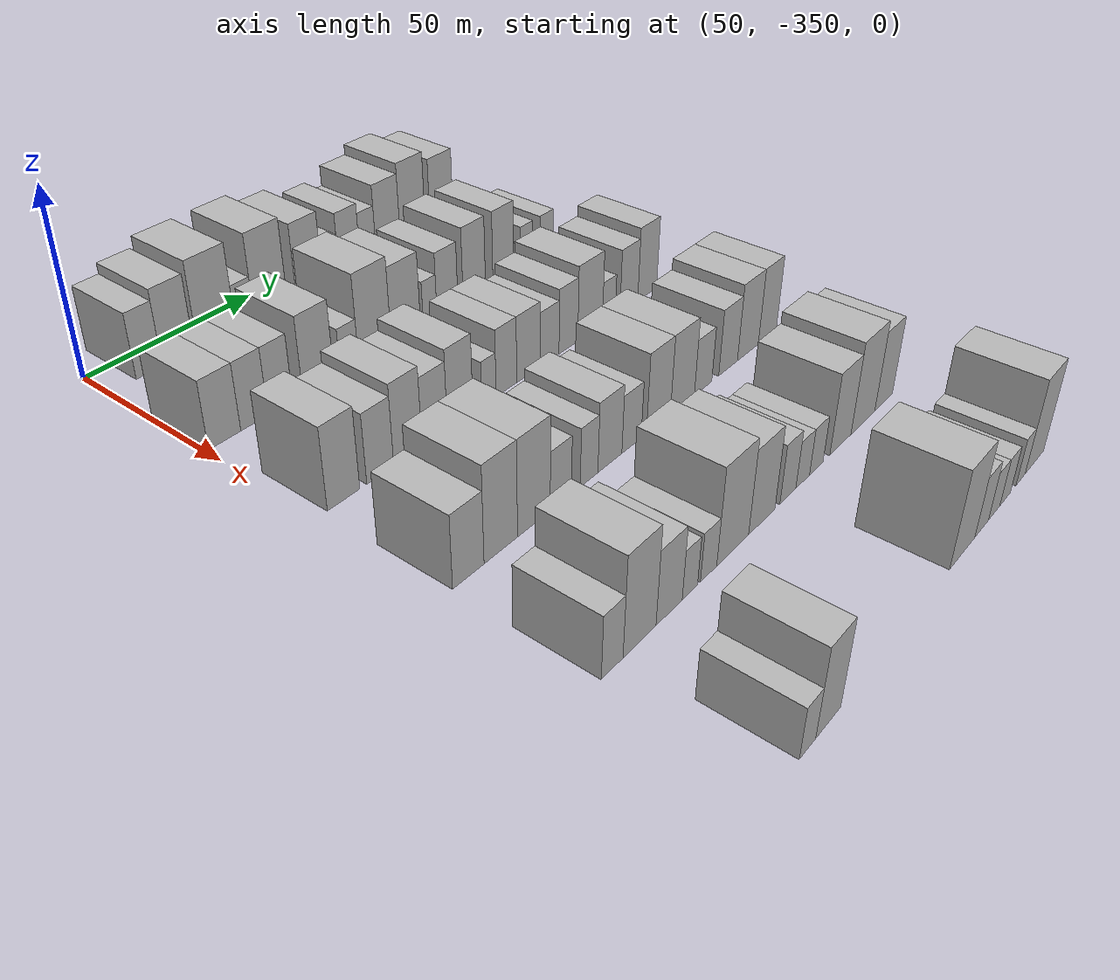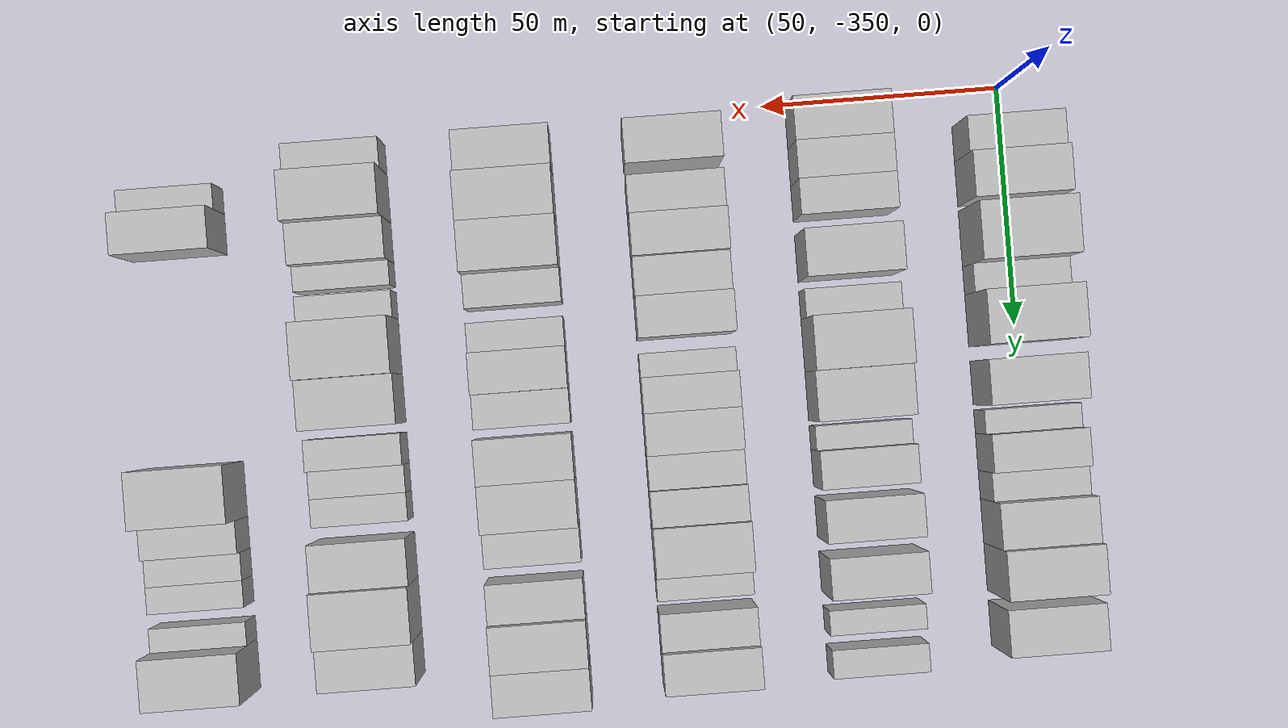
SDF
<sdf version="1.6">
 <world name="default">
  <model name="building_23">
   <static>1</static>
   <pose>50.0000 -338.8808 0 0.000000 0.000000 0.000000</pose>
   <link name="link">
    <pose>0 0 9.00 0 0 0</pose>
    <collision name="collision"><geometry><box><size>20.0000 7.4057 18.0000</size></box></geometry></collision>
    <visual name="visual">
     <cast_shadows>0</cast_shadows>
     <geometry><box><size>20.0000 7.4057 18.0000</size></box></geometry>
     <material>
      <script>
       <uri>model://HANNAS_wall/materials/scripts</uri>
       <uri>model://HANNAS_wall/materials/textures</uri>
       <name>vrc/HANNAS_wall</name>
      </script>
     </material>
    </visual>
   </link>
  </model>
  <model name="building_24">
   <static>1</static>
   <pose>50.0000 -330.4658 0 0.000000 0.000000 0.000000</pose>
   <link name="link">
    <pose>0 0 10.50 0 0 0</pose>
    <collision name="collision"><geometry><box><size>20.0000 9.4243 21.0000</size></box></geometry></collision>
    <visual name="visual">
     <cast_shadows>0</cast_shadows>
     <geometry><box><size>20.0000 9.4243 21.0000</size></box></geometry>
     <material>
      <script>
       <uri>model://HANNAS_wall/materials/scripts</uri>
       <uri>model://HANNAS_wall/materials/textures</uri>
       <name>vrc/HANNAS_wall</name>
      </script>
     </material>
    </visual>
   </link>
  </model>
  <model name="building_25">
   <static>1</static>
   <pose>50.0000 -318.8479 0 0.000000 0.000000 0.000000</pose>
   <link name="link">
    <pose>0 0 12.00 0 0 0</pose>
    <collision name="collision"><geometry><box><size>20.0000 11.8115 24.0000</size></box></geometry></collision>
    <visual name="visual">
     <cast_shadows>0</cast_shadows>
     <geometry><box><size>20.0000 11.8115 24.0000</size></box></geometry>
     <material>
      <script>
       <uri>model://HANNAS_wall/materials/scripts</uri>
       <uri>model://HANNAS_wall/materials/textures</uri>
       <name>vrc/HANNAS_wall</name>
      </script>
     </material>
    </visual>
   </link>
  </model>
  <model name="building_26">
   <static>1</static>
   <pose>50.0000 -309.9669 0 0.000000 0.000000 0.000000</pose>
   <link name="link">
    <pose>0 0 6.00 0 0 0</pose>
    <collision name="collision"><geometry><box><size>20.0000 5.9504 12.0000</size></box></geometry></collision>
    <visual name="visual">
     <cast_shadows>0</cast_shadows>
     <geometry><box><size>20.0000 5.9504 12.0000</size></box></geometry>
     <material>
      <script>
       <uri>model://HANNAS_wall/materials/scripts</uri>
       <uri>model://HANNAS_wall/materials/textures</uri>
       <name>vrc/HANNAS_wall</name>
      </script>
     </material>
    </visual>
   </link>
  </model>
  <model name="building_27">
   <static>1</static>
   <pose>50.0000 -301.4803 0 0.000000 0.000000 0.000000</pose>
   <link name="link">
    <pose>0 0 12.00 0 0 0</pose>
    <collision name="collision"><geometry><box><size>20.0000 11.0227 24.0000</size></box></geometry></collision>
    <visual name="visual">
     <cast_shadows>0</cast_shadows>
     <geometry><box><size>20.0000 11.0227 24.0000</size></box></geometry>
     <material>
      <script>
       <uri>model://HANNAS_wall/materials/scripts</uri>
       <uri>model://HANNAS_wall/materials/textures</uri>
       <name>vrc/HANNAS_wall</name>
      </script>
     </material>
    </visual>
   </link>
  </model>
  <model name="building_28">
   <static>1</static>
   <pose>50.0000 -288.3178 0 0.000000 0.000000 0.000000</pose>
   <link name="link">
    <pose>0 0 10.50 0 0 0</pose>
    <collision name="collision"><geometry><box><size>20.0000 9.3022 21.0000</size></box></geometry></collision>
    <visual name="visual">
     <cast_shadows>0</cast_shadows>
     <geometry><box><size>20.0000 9.3022 21.0000</size></box></geometry>
     <material>
      <script>
       <uri>model://HANNAS_wall/materials/scripts</uri>
       <uri>model://HANNAS_wall/materials/textures</uri>
       <name>vrc/HANNAS_wall</name>
      </script>
     </material>
    </visual>
   </link>
  </model>
  <model name="building_29">
   <static>1</static>
   <pose>50.0000 -280.1687 0 0.000000 0.000000 0.000000</pose>
   <link name="link">
    <pose>0 0 6.00 0 0 0</pose>
    <collision name="collision"><geometry><box><size>20.0000 4.9961 12.0000</size></box></geometry></collision>
    <visual name="visual">
     <cast_shadows>0</cast_shadows>
     <geometry><box><size>20.0000 4.9961 12.0000</size></box></geometry>
     <material>
      <script>
       <uri>model://HANNAS_wall/materials/scripts</uri>
       <uri>model://HANNAS_wall/materials/textures</uri>
       <name>vrc/HANNAS_wall</name>
      </script>
     </material>
    </visual>
   </link>
  </model>
  <model name="building_30">
   <static>1</static>
   <pose>50.0000 -273.7644 0 0.000000 0.000000 0.000000</pose>
   <link name="link">
    <pose>0 0 9.00 0 0 0</pose>
    <collision name="collision"><geometry><box><size>20.0000 7.8124 18.0000</size></box></geometry></collision>
    <visual name="visual">
     <cast_shadows>0</cast_shadows>
     <geometry><box><size>20.0000 7.8124 18.0000</size></box></geometry>
     <material>
      <script>
       <uri>model://HANNAS_wall/materials/scripts</uri>
       <uri>model://HANNAS_wall/materials/textures</uri>
       <name>vrc/HANNAS_wall</name>
      </script>
     </material>
    </visual>
   </link>
  </model>
  <model name="building_31">
   <static>1</static>
   <pose>50.0000 -266.8491 0 0.000000 0.000000 0.000000</pose>
   <link name="link">
    <pose>0 0 7.50 0 0 0</pose>
    <collision name="collision"><geometry><box><size>20.0000 6.0181 15.0000</size></box></geometry></collision>
    <visual name="visual">
     <cast_shadows>0</cast_shadows>
     <geometry><box><size>20.0000 6.0181 15.0000</size></box></geometry>
     <material>
      <script>
       <uri>model://HANNAS_wall/materials/scripts</uri>
       <uri>model://HANNAS_wall/materials/textures</uri>
       <name>vrc/HANNAS_wall</name>
      </script>
     </material>
    </visual>
   </link>
  </model>
  <model name="building_32">
   <static>1</static>
   <pose>50.0000 -259.1165 0 0.000000 0.000000 0.000000</pose>
   <link name="link">
    <pose>0 0 10.50 0 0 0</pose>
    <collision name="collision"><geometry><box><size>20.0000 9.4472 21.0000</size></box></geometry></collision>
    <visual name="visual">
     <cast_shadows>0</cast_shadows>
     <geometry><box><size>20.0000 9.4472 21.0000</size></box></geometry>
     <material>
      <script>
       <uri>model://HANNAS_wall/materials/scripts</uri>
       <uri>model://HANNAS_wall/materials/textures</uri>
       <name>vrc/HANNAS_wall</name>
      </script>
     </material>
    </visual>
   </link>
  </model>
  <model name="building_33">
   <static>1</static>
   <pose>50.0000 -249.3366 0 0.000000 0.000000 0.000000</pose>
   <link name="link">
    <pose>0 0 12.00 0 0 0</pose>
    <collision name="collision"><geometry><box><size>20.0000 10.1127 24.0000</size></box></geometry></collision>
    <visual name="visual">
     <cast_shadows>0</cast_shadows>
     <geometry><box><size>20.0000 10.1127 24.0000</size></box></geometry>
     <material>
      <script>
       <uri>model://HANNAS_wall/materials/scripts</uri>
       <uri>model://HANNAS_wall/materials/textures</uri>
       <name>vrc/HANNAS_wall</name>
      </script>
     </material>
    </visual>
   </link>
  </model>
  <model name="building_34">
   <static>1</static>
   <pose>50.0000 -237.4707 0 0.000000 0.000000 0.000000</pose>
   <link name="link">
    <pose>0 0 10.50 0 0 0</pose>
    <collision name="collision"><geometry><box><size>20.0000 9.6190 21.0000</size></box></geometry></collision>
    <visual name="visual">
     <cast_shadows>0</cast_shadows>
     <geometry><box><size>20.0000 9.6190 21.0000</size></box></geometry>
     <material>
      <script>
       <uri>model://HANNAS_wall/materials/scripts</uri>
       <uri>model://HANNAS_wall/materials/textures</uri>
       <name>vrc/HANNAS_wall</name>
      </script>
     </material>
    </visual>
   </link>
  </model>
  <model name="building_139">
   <static>1</static>
   <pose>85.0000 -344.8213 0 0.000000 0.000000 0.000000</pose>
   <link name="link">
    <pose>0 0 9.00 0 0 0</pose>
    <collision name="collision"><geometry><box><size>20.0000 8.9498 18.0000</size></box></geometry></collision>
    <visual name="visual">
     <cast_shadows>0</cast_shadows>
     <geometry><box><size>20.0000 8.9498 18.0000</size></box></geometry>
     <material>
      <script>
       <uri>model://HANNAS_wall/materials/scripts</uri>
       <uri>model://HANNAS_wall/materials/textures</uri>
       <name>vrc/HANNAS_wall</name>
      </script>
     </material>
    </visual>
   </link>
  </model>
  <model name="building_140">
   <static>1</static>
   <pose>85.0000 -336.4398 0 0.000000 0.000000 0.000000</pose>
   <link name="link">
    <pose>0 0 9.00 0 0 0</pose>
    <collision name="collision"><geometry><box><size>20.0000 7.8134 18.0000</size></box></geometry></collision>
    <visual name="visual">
     <cast_shadows>0</cast_shadows>
     <geometry><box><size>20.0000 7.8134 18.0000</size></box></geometry>
     <material>
      <script>
       <uri>model://HANNAS_wall/materials/scripts</uri>
       <uri>model://HANNAS_wall/materials/textures</uri>
       <name>vrc/HANNAS_wall</name>
      </script>
     </material>
    </visual>
   </link>
  </model>
  <model name="building_141">
   <static>1</static>
   <pose>85.0000 -328.8404 0 0.000000 0.000000 0.000000</pose>
   <link name="link">
    <pose>0 0 9.00 0 0 0</pose>
    <collision name="collision"><geometry><box><size>20.0000 7.3853 18.0000</size></box></geometry></collision>
    <visual name="visual">
     <cast_shadows>0</cast_shadows>
     <geometry><box><size>20.0000 7.3853 18.0000</size></box></geometry>
     <material>
      <script>
       <uri>model://HANNAS_wall/materials/scripts</uri>
       <uri>model://HANNAS_wall/materials/textures</uri>
       <name>vrc/HANNAS_wall</name>
      </script>
     </material>
    </visual>
   </link>
  </model>
  <model name="building_142">
   <static>1</static>
   <pose>85.0000 -317.2574 0 0.000000 0.000000 0.000000</pose>
   <link name="link">
    <pose>0 0 10.50 0 0 0</pose>
    <collision name="collision"><geometry><box><size>20.0000 9.7807 21.0000</size></box></geometry></collision>
    <visual name="visual">
     <cast_shadows>0</cast_shadows>
     <geometry><box><size>20.0000 9.7807 21.0000</size></box></geometry>
     <material>
      <script>
       <uri>model://HANNAS_wall/materials/scripts</uri>
       <uri>model://HANNAS_wall/materials/textures</uri>
       <name>vrc/HANNAS_wall</name>
      </script>
     </material>
    </visual>
   </link>
  </model>
  <model name="building_143">
   <static>1</static>
   <pose>85.0000 -307.3915 0 0.000000 0.000000 0.000000</pose>
   <link name="link">
    <pose>0 0 6.00 0 0 0</pose>
    <collision name="collision"><geometry><box><size>20.0000 5.9512 12.0000</size></box></geometry></collision>
    <visual name="visual">
     <cast_shadows>0</cast_shadows>
     <geometry><box><size>20.0000 5.9512 12.0000</size></box></geometry>
     <material>
      <script>
       <uri>model://HANNAS_wall/materials/scripts</uri>
       <uri>model://HANNAS_wall/materials/textures</uri>
       <name>vrc/HANNAS_wall</name>
      </script>
     </material>
    </visual>
   </link>
  </model>
  <model name="building_144">
   <static>1</static>
   <pose>85.0000 -298.8935 0 0.000000 0.000000 0.000000</pose>
   <link name="link">
    <pose>0 0 12.00 0 0 0</pose>
    <collision name="collision"><geometry><box><size>20.0000 11.0449 24.0000</size></box></geometry></collision>
    <visual name="visual">
     <cast_shadows>0</cast_shadows>
     <geometry><box><size>20.0000 11.0449 24.0000</size></box></geometry>
     <material>
      <script>
       <uri>model://HANNAS_wall/materials/scripts</uri>
       <uri>model://HANNAS_wall/materials/textures</uri>
       <name>vrc/HANNAS_wall</name>
      </script>
     </material>
    </visual>
   </link>
  </model>
  <model name="building_145">
   <static>1</static>
   <pose>85.0000 -288.1964 0 0.000000 0.000000 0.000000</pose>
   <link name="link">
    <pose>0 0 10.50 0 0 0</pose>
    <collision name="collision"><geometry><box><size>20.0000 10.3492 21.0000</size></box></geometry></collision>
    <visual name="visual">
     <cast_shadows>0</cast_shadows>
     <geometry><box><size>20.0000 10.3492 21.0000</size></box></geometry>
     <material>
      <script>
       <uri>model://HANNAS_wall/materials/scripts</uri>
       <uri>model://HANNAS_wall/materials/textures</uri>
       <name>vrc/HANNAS_wall</name>
      </script>
     </material>
    </visual>
   </link>
  </model>
  <model name="building_146">
   <static>1</static>
   <pose>85.0000 -279.5105 0 0.000000 0.000000 0.000000</pose>
   <link name="link">
    <pose>0 0 6.00 0 0 0</pose>
    <collision name="collision"><geometry><box><size>20.0000 5.0227 12.0000</size></box></geometry></collision>
    <visual name="visual">
     <cast_shadows>0</cast_shadows>
     <geometry><box><size>20.0000 5.0227 12.0000</size></box></geometry>
     <material>
      <script>
       <uri>model://HANNAS_wall/materials/scripts</uri>
       <uri>model://HANNAS_wall/materials/textures</uri>
       <name>vrc/HANNAS_wall</name>
      </script>
     </material>
    </visual>
   </link>
  </model>
  <model name="building_147">
   <static>1</static>
   <pose>85.0000 -273.0552 0 0.000000 0.000000 0.000000</pose>
   <link name="link">
    <pose>0 0 9.00 0 0 0</pose>
    <collision name="collision"><geometry><box><size>20.0000 7.8879 18.0000</size></box></geometry></collision>
    <visual name="visual">
     <cast_shadows>0</cast_shadows>
     <geometry><box><size>20.0000 7.8879 18.0000</size></box></geometry>
     <material>
      <script>
       <uri>model://HANNAS_wall/materials/scripts</uri>
       <uri>model://HANNAS_wall/materials/textures</uri>
       <name>vrc/HANNAS_wall</name>
      </script>
     </material>
    </visual>
   </link>
  </model>
  <model name="building_148">
   <static>1</static>
   <pose>85.0000 -262.7360 0 0.000000 0.000000 0.000000</pose>
   <link name="link">
    <pose>0 0 10.50 0 0 0</pose>
    <collision name="collision"><geometry><box><size>20.0000 8.7506 21.0000</size></box></geometry></collision>
    <visual name="visual">
     <cast_shadows>0</cast_shadows>
     <geometry><box><size>20.0000 8.7506 21.0000</size></box></geometry>
     <material>
      <script>
       <uri>model://HANNAS_wall/materials/scripts</uri>
       <uri>model://HANNAS_wall/materials/textures</uri>
       <name>vrc/HANNAS_wall</name>
      </script>
     </material>
    </visual>
   </link>
  </model>
  <model name="building_149">
   <static>1</static>
   <pose>85.0000 -251.1179 0 0.000000 0.000000 0.000000</pose>
   <link name="link">
    <pose>0 0 10.50 0 0 0</pose>
    <collision name="collision"><geometry><box><size>20.0000 8.4857 21.0000</size></box></geometry></collision>
    <visual name="visual">
     <cast_shadows>0</cast_shadows>
     <geometry><box><size>20.0000 8.4857 21.0000</size></box></geometry>
     <material>
      <script>
       <uri>model://HANNAS_wall/materials/scripts</uri>
       <uri>model://HANNAS_wall/materials/textures</uri>
       <name>vrc/HANNAS_wall</name>
      </script>
     </material>
    </visual>
   </link>
  </model>
  <model name="building_150">
   <static>1</static>
   <pose>85.0000 -241.2983 0 0.000000 0.000000 0.000000</pose>
   <link name="link">
    <pose>0 0 6.00 0 0 0</pose>
    <collision name="collision"><geometry><box><size>20.0000 5.1536 12.0000</size></box></geometry></collision>
    <visual name="visual">
     <cast_shadows>0</cast_shadows>
     <geometry><box><size>20.0000 5.1536 12.0000</size></box></geometry>
     <material>
      <script>
       <uri>model://HANNAS_wall/materials/scripts</uri>
       <uri>model://HANNAS_wall/materials/textures</uri>
       <name>vrc/HANNAS_wall</name>
      </script>
     </material>
    </visual>
   </link>
  </model>
  <model name="building_151">
   <static>1</static>
   <pose>85.0000 -232.7689 0 0.000000 0.000000 0.000000</pose>
   <link name="link">
    <pose>0 0 6.00 0 0 0</pose>
    <collision name="collision"><geometry><box><size>20.0000 5.9052 12.0000</size></box></geometry></collision>
    <visual name="visual">
     <cast_shadows>0</cast_shadows>
     <geometry><box><size>20.0000 5.9052 12.0000</size></box></geometry>
     <material>
      <script>
       <uri>model://HANNAS_wall/materials/scripts</uri>
       <uri>model://HANNAS_wall/materials/textures</uri>
       <name>vrc/HANNAS_wall</name>
      </script>
     </material>
    </visual>
   </link>
  </model>
  <model name="building_264">
   <static>1</static>
   <pose>120.0000 -342.4818 0 0.000000 0.000000 0.000000</pose>
   <link name="link">
    <pose>0 0 10.50 0 0 0</pose>
    <collision name="collision"><geometry><box><size>20.0000 9.1230 21.0000</size></box></geometry></collision>
    <visual name="visual">
     <cast_shadows>0</cast_shadows>
     <geometry><box><size>20.0000 9.1230 21.0000</size></box></geometry>
     <material>
      <script>
       <uri>model://HANNAS_wall/materials/scripts</uri>
       <uri>model://HANNAS_wall/materials/textures</uri>
       <name>vrc/HANNAS_wall</name>
      </script>
     </material>
    </visual>
   </link>
  </model>
  <model name="building_265">
   <static>1</static>
   <pose>120.0000 -331.9296 0 0.000000 0.000000 0.000000</pose>
   <link name="link">
    <pose>0 0 9.00 0 0 0</pose>
    <collision name="collision"><geometry><box><size>20.0000 7.9813 18.0000</size></box></geometry></collision>
    <visual name="visual">
     <cast_shadows>0</cast_shadows>
     <geometry><box><size>20.0000 7.9813 18.0000</size></box></geometry>
     <material>
      <script>
       <uri>model://HANNAS_wall/materials/scripts</uri>
       <uri>model://HANNAS_wall/materials/textures</uri>
       <name>vrc/HANNAS_wall</name>
      </script>
     </material>
    </visual>
   </link>
  </model>
  <model name="building_266">
   <static>1</static>
   <pose>120.0000 -323.5981 0 0.000000 0.000000 0.000000</pose>
   <link name="link">
    <pose>0 0 10.50 0 0 0</pose>
    <collision name="collision"><geometry><box><size>20.0000 8.6817 21.0000</size></box></geometry></collision>
    <visual name="visual">
     <cast_shadows>0</cast_shadows>
     <geometry><box><size>20.0000 8.6817 21.0000</size></box></geometry>
     <material>
      <script>
       <uri>model://HANNAS_wall/materials/scripts</uri>
       <uri>model://HANNAS_wall/materials/textures</uri>
       <name>vrc/HANNAS_wall</name>
      </script>
     </material>
    </visual>
   </link>
  </model>
  <model name="building_267">
   <static>1</static>
   <pose>120.0000 -315.2016 0 0.000000 0.000000 0.000000</pose>
   <link name="link">
    <pose>0 0 9.00 0 0 0</pose>
    <collision name="collision"><geometry><box><size>20.0000 8.1111 18.0000</size></box></geometry></collision>
    <visual name="visual">
     <cast_shadows>0</cast_shadows>
     <geometry><box><size>20.0000 8.1111 18.0000</size></box></geometry>
     <material>
      <script>
       <uri>model://HANNAS_wall/materials/scripts</uri>
       <uri>model://HANNAS_wall/materials/textures</uri>
       <name>vrc/HANNAS_wall</name>
      </script>
     </material>
    </visual>
   </link>
  </model>
  <model name="building_268">
   <static>1</static>
   <pose>120.0000 -306.8963 0 0.000000 0.000000 0.000000</pose>
   <link name="link">
    <pose>0 0 10.50 0 0 0</pose>
    <collision name="collision"><geometry><box><size>20.0000 8.4996 21.0000</size></box></geometry></collision>
    <visual name="visual">
     <cast_shadows>0</cast_shadows>
     <geometry><box><size>20.0000 8.4996 21.0000</size></box></geometry>
     <material>
      <script>
       <uri>model://HANNAS_wall/materials/scripts</uri>
       <uri>model://HANNAS_wall/materials/textures</uri>
       <name>vrc/HANNAS_wall</name>
      </script>
     </material>
    </visual>
   </link>
  </model>
  <model name="building_269">
   <static>1</static>
   <pose>120.0000 -297.1615 0 0.000000 0.000000 0.000000</pose>
   <link name="link">
    <pose>0 0 6.00 0 0 0</pose>
    <collision name="collision"><geometry><box><size>20.0000 4.9700 12.0000</size></box></geometry></collision>
    <visual name="visual">
     <cast_shadows>0</cast_shadows>
     <geometry><box><size>20.0000 4.9700 12.0000</size></box></geometry>
     <material>
      <script>
       <uri>model://HANNAS_wall/materials/scripts</uri>
       <uri>model://HANNAS_wall/materials/textures</uri>
       <name>vrc/HANNAS_wall</name>
      </script>
     </material>
    </visual>
   </link>
  </model>
  <model name="building_270">
   <static>1</static>
   <pose>120.0000 -290.9961 0 0.000000 0.000000 0.000000</pose>
   <link name="link">
    <pose>0 0 9.00 0 0 0</pose>
    <collision name="collision"><geometry><box><size>20.0000 7.3608 18.0000</size></box></geometry></collision>
    <visual name="visual">
     <cast_shadows>0</cast_shadows>
     <geometry><box><size>20.0000 7.3608 18.0000</size></box></geometry>
     <material>
      <script>
       <uri>model://HANNAS_wall/materials/scripts</uri>
       <uri>model://HANNAS_wall/materials/textures</uri>
       <name>vrc/HANNAS_wall</name>
      </script>
     </material>
    </visual>
   </link>
  </model>
  <model name="building_271">
   <static>1</static>
   <pose>120.0000 -282.9710 0 0.000000 0.000000 0.000000</pose>
   <link name="link">
    <pose>0 0 9.00 0 0 0</pose>
    <collision name="collision"><geometry><box><size>20.0000 8.6893 18.0000</size></box></geometry></collision>
    <visual name="visual">
     <cast_shadows>0</cast_shadows>
     <geometry><box><size>20.0000 8.6893 18.0000</size></box></geometry>
     <material>
      <script>
       <uri>model://HANNAS_wall/materials/scripts</uri>
       <uri>model://HANNAS_wall/materials/textures</uri>
       <name>vrc/HANNAS_wall</name>
      </script>
     </material>
    </visual>
   </link>
  </model>
  <model name="building_272">
   <static>1</static>
   <pose>120.0000 -275.0363 0 0.000000 0.000000 0.000000</pose>
   <link name="link">
    <pose>0 0 7.50 0 0 0</pose>
    <collision name="collision"><geometry><box><size>20.0000 7.1800 15.0000</size></box></geometry></collision>
    <visual name="visual">
     <cast_shadows>0</cast_shadows>
     <geometry><box><size>20.0000 7.1800 15.0000</size></box></geometry>
     <material>
      <script>
       <uri>model://HANNAS_wall/materials/scripts</uri>
       <uri>model://HANNAS_wall/materials/textures</uri>
       <name>vrc/HANNAS_wall</name>
      </script>
     </material>
    </visual>
   </link>
  </model>
  <model name="building_273">
   <static>1</static>
   <pose>120.0000 -267.7383 0 0.000000 0.000000 0.000000</pose>
   <link name="link">
    <pose>0 0 9.00 0 0 0</pose>
    <collision name="collision"><geometry><box><size>20.0000 7.4162 18.0000</size></box></geometry></collision>
    <visual name="visual">
     <cast_shadows>0</cast_shadows>
     <geometry><box><size>20.0000 7.4162 18.0000</size></box></geometry>
     <material>
      <script>
       <uri>model://HANNAS_wall/materials/scripts</uri>
       <uri>model://HANNAS_wall/materials/textures</uri>
       <name>vrc/HANNAS_wall</name>
      </script>
     </material>
    </visual>
   </link>
  </model>
  <model name="building_274">
   <static>1</static>
   <pose>120.0000 -258.9765 0 0.000000 0.000000 0.000000</pose>
   <link name="link">
    <pose>0 0 10.50 0 0 0</pose>
    <collision name="collision"><geometry><box><size>20.0000 10.1074 21.0000</size></box></geometry></collision>
    <visual name="visual">
     <cast_shadows>0</cast_shadows>
     <geometry><box><size>20.0000 10.1074 21.0000</size></box></geometry>
     <material>
      <script>
       <uri>model://HANNAS_wall/materials/scripts</uri>
       <uri>model://HANNAS_wall/materials/textures</uri>
       <name>vrc/HANNAS_wall</name>
      </script>
     </material>
    </visual>
   </link>
  </model>
  <model name="building_275">
   <static>1</static>
   <pose>120.0000 -251.2039 0 0.000000 0.000000 0.000000</pose>
   <link name="link">
    <pose>0 0 6.00 0 0 0</pose>
    <collision name="collision"><geometry><box><size>20.0000 5.4377 12.0000</size></box></geometry></collision>
    <visual name="visual">
     <cast_shadows>0</cast_shadows>
     <geometry><box><size>20.0000 5.4377 12.0000</size></box></geometry>
     <material>
      <script>
       <uri>model://HANNAS_wall/materials/scripts</uri>
       <uri>model://HANNAS_wall/materials/textures</uri>
       <name>vrc/HANNAS_wall</name>
      </script>
     </material>
    </visual>
   </link>
  </model>
  <model name="building_276">
   <static>1</static>
   <pose>120.0000 -242.5941 0 0.000000 0.000000 0.000000</pose>
   <link name="link">
    <pose>0 0 9.00 0 0 0</pose>
    <collision name="collision"><geometry><box><size>20.0000 7.7819 18.0000</size></box></geometry></collision>
    <visual name="visual">
     <cast_shadows>0</cast_shadows>
     <geometry><box><size>20.0000 7.7819 18.0000</size></box></geometry>
     <material>
      <script>
       <uri>model://HANNAS_wall/materials/scripts</uri>
       <uri>model://HANNAS_wall/materials/textures</uri>
       <name>vrc/HANNAS_wall</name>
      </script>
     </material>
    </visual>
   </link>
  </model>
  <model name="building_277">
   <static>1</static>
   <pose>120.0000 -234.4575 0 0.000000 0.000000 0.000000</pose>
   <link name="link">
    <pose>0 0 10.50 0 0 0</pose>
    <collision name="collision"><geometry><box><size>20.0000 8.4914 21.0000</size></box></geometry></collision>
    <visual name="visual">
     <cast_shadows>0</cast_shadows>
     <geometry><box><size>20.0000 8.4914 21.0000</size></box></geometry>
     <material>
      <script>
       <uri>model://HANNAS_wall/materials/scripts</uri>
       <uri>model://HANNAS_wall/materials/textures</uri>
       <name>vrc/HANNAS_wall</name>
      </script>
     </material>
    </visual>
   </link>
  </model>
  <model name="building_387">
   <static>1</static>
   <pose>155.0000 -343.2864 0 0.000000 0.000000 0.000000</pose>
   <link name="link">
    <pose>0 0 9.00 0 0 0</pose>
    <collision name="collision"><geometry><box><size>20.0000 8.9613 18.0000</size></box></geometry></collision>
    <visual name="visual">
     <cast_shadows>0</cast_shadows>
     <geometry><box><size>20.0000 8.9613 18.0000</size></box></geometry>
     <material>
      <script>
       <uri>model://HANNAS_wall/materials/scripts</uri>
       <uri>model://HANNAS_wall/materials/textures</uri>
       <name>vrc/HANNAS_wall</name>
      </script>
     </material>
    </visual>
   </link>
  </model>
  <model name="building_388">
   <static>1</static>
   <pose>155.0000 -333.7986 0 0.000000 0.000000 0.000000</pose>
   <link name="link">
    <pose>0 0 12.00 0 0 0</pose>
    <collision name="collision"><geometry><box><size>20.0000 10.0143 24.0000</size></box></geometry></collision>
    <visual name="visual">
     <cast_shadows>0</cast_shadows>
     <geometry><box><size>20.0000 10.0143 24.0000</size></box></geometry>
     <material>
      <script>
       <uri>model://HANNAS_wall/materials/scripts</uri>
       <uri>model://HANNAS_wall/materials/textures</uri>
       <name>vrc/HANNAS_wall</name>
      </script>
     </material>
    </visual>
   </link>
  </model>
  <model name="building_389">
   <static>1</static>
   <pose>155.0000 -323.6456 0 0.000000 0.000000 0.000000</pose>
   <link name="link">
    <pose>0 0 12.00 0 0 0</pose>
    <collision name="collision"><geometry><box><size>20.0000 10.2917 24.0000</size></box></geometry></collision>
    <visual name="visual">
     <cast_shadows>0</cast_shadows>
     <geometry><box><size>20.0000 10.2917 24.0000</size></box></geometry>
     <material>
      <script>
       <uri>model://HANNAS_wall/materials/scripts</uri>
       <uri>model://HANNAS_wall/materials/textures</uri>
       <name>vrc/HANNAS_wall</name>
      </script>
     </material>
    </visual>
   </link>
  </model>
  <model name="building_390">
   <static>1</static>
   <pose>155.0000 -315.0106 0 0.000000 0.000000 0.000000</pose>
   <link name="link">
    <pose>0 0 7.50 0 0 0</pose>
    <collision name="collision"><geometry><box><size>20.0000 6.9785 15.0000</size></box></geometry></collision>
    <visual name="visual">
     <cast_shadows>0</cast_shadows>
     <geometry><box><size>20.0000 6.9785 15.0000</size></box></geometry>
     <material>
      <script>
       <uri>model://HANNAS_wall/materials/scripts</uri>
       <uri>model://HANNAS_wall/materials/textures</uri>
       <name>vrc/HANNAS_wall</name>
      </script>
     </material>
    </visual>
   </link>
  </model>
  <model name="building_391">
   <static>1</static>
   <pose>155.0000 -305.4700 0 0.000000 0.000000 0.000000</pose>
   <link name="link">
    <pose>0 0 7.50 0 0 0</pose>
    <collision name="collision"><geometry><box><size>20.0000 6.1027 15.0000</size></box></geometry></collision>
    <visual name="visual">
     <cast_shadows>0</cast_shadows>
     <geometry><box><size>20.0000 6.1027 15.0000</size></box></geometry>
     <material>
      <script>
       <uri>model://HANNAS_wall/materials/scripts</uri>
       <uri>model://HANNAS_wall/materials/textures</uri>
       <name>vrc/HANNAS_wall</name>
      </script>
     </material>
    </visual>
   </link>
  </model>
  <model name="building_392">
   <static>1</static>
   <pose>155.0000 -298.1206 0 0.000000 0.000000 0.000000</pose>
   <link name="link">
    <pose>0 0 9.00 0 0 0</pose>
    <collision name="collision"><geometry><box><size>20.0000 8.5961 18.0000</size></box></geometry></collision>
    <visual name="visual">
     <cast_shadows>0</cast_shadows>
     <geometry><box><size>20.0000 8.5961 18.0000</size></box></geometry>
     <material>
      <script>
       <uri>model://HANNAS_wall/materials/scripts</uri>
       <uri>model://HANNAS_wall/materials/textures</uri>
       <name>vrc/HANNAS_wall</name>
      </script>
     </material>
    </visual>
   </link>
  </model>
  <model name="building_393">
   <static>1</static>
   <pose>155.0000 -290.2399 0 0.000000 0.000000 0.000000</pose>
   <link name="link">
    <pose>0 0 7.50 0 0 0</pose>
    <collision name="collision"><geometry><box><size>20.0000 7.1653 15.0000</size></box></geometry></collision>
    <visual name="visual">
     <cast_shadows>0</cast_shadows>
     <geometry><box><size>20.0000 7.1653 15.0000</size></box></geometry>
     <material>
      <script>
       <uri>model://HANNAS_wall/materials/scripts</uri>
       <uri>model://HANNAS_wall/materials/textures</uri>
       <name>vrc/HANNAS_wall</name>
      </script>
     </material>
    </visual>
   </link>
  </model>
  <model name="building_394">
   <static>1</static>
   <pose>155.0000 -279.9889 0 0.000000 0.000000 0.000000</pose>
   <link name="link">
    <pose>0 0 10.50 0 0 0</pose>
    <collision name="collision"><geometry><box><size>20.0000 9.3367 21.0000</size></box></geometry></collision>
    <visual name="visual">
     <cast_shadows>0</cast_shadows>
     <geometry><box><size>20.0000 9.3367 21.0000</size></box></geometry>
     <material>
      <script>
       <uri>model://HANNAS_wall/materials/scripts</uri>
       <uri>model://HANNAS_wall/materials/textures</uri>
       <name>vrc/HANNAS_wall</name>
      </script>
     </material>
    </visual>
   </link>
  </model>
  <model name="building_395">
   <static>1</static>
   <pose>155.0000 -270.4301 0 0.000000 0.000000 0.000000</pose>
   <link name="link">
    <pose>0 0 10.50 0 0 0</pose>
    <collision name="collision"><geometry><box><size>20.0000 9.7810 21.0000</size></box></geometry></collision>
    <visual name="visual">
     <cast_shadows>0</cast_shadows>
     <geometry><box><size>20.0000 9.7810 21.0000</size></box></geometry>
     <material>
      <script>
       <uri>model://HANNAS_wall/materials/scripts</uri>
       <uri>model://HANNAS_wall/materials/textures</uri>
       <name>vrc/HANNAS_wall</name>
      </script>
     </material>
    </visual>
   </link>
  </model>
  <model name="building_396">
   <static>1</static>
   <pose>155.0000 -261.8392 0 0.000000 0.000000 0.000000</pose>
   <link name="link">
    <pose>0 0 7.50 0 0 0</pose>
    <collision name="collision"><geometry><box><size>20.0000 7.4007 15.0000</size></box></geometry></collision>
    <visual name="visual">
     <cast_shadows>0</cast_shadows>
     <geometry><box><size>20.0000 7.4007 15.0000</size></box></geometry>
     <material>
      <script>
       <uri>model://HANNAS_wall/materials/scripts</uri>
       <uri>model://HANNAS_wall/materials/textures</uri>
       <name>vrc/HANNAS_wall</name>
      </script>
     </material>
    </visual>
   </link>
  </model>
  <model name="building_397">
   <static>1</static>
   <pose>155.0000 -250.9913 0 0.000000 0.000000 0.000000</pose>
   <link name="link">
    <pose>0 0 9.00 0 0 0</pose>
    <collision name="collision"><geometry><box><size>20.0000 8.2952 18.0000</size></box></geometry></collision>
    <visual name="visual">
     <cast_shadows>0</cast_shadows>
     <geometry><box><size>20.0000 8.2952 18.0000</size></box></geometry>
     <material>
      <script>
       <uri>model://HANNAS_wall/materials/scripts</uri>
       <uri>model://HANNAS_wall/materials/textures</uri>
       <name>vrc/HANNAS_wall</name>
      </script>
     </material>
    </visual>
   </link>
  </model>
  <model name="building_398">
   <static>1</static>
   <pose>155.0000 -242.0202 0 0.000000 0.000000 0.000000</pose>
   <link name="link">
    <pose>0 0 10.50 0 0 0</pose>
    <collision name="collision"><geometry><box><size>20.0000 9.6470 21.0000</size></box></geometry></collision>
    <visual name="visual">
     <cast_shadows>0</cast_shadows>
     <geometry><box><size>20.0000 9.6470 21.0000</size></box></geometry>
     <material>
      <script>
       <uri>model://HANNAS_wall/materials/scripts</uri>
       <uri>model://HANNAS_wall/materials/textures</uri>
       <name>vrc/HANNAS_wall</name>
      </script>
     </material>
    </visual>
   </link>
  </model>
  <model name="building_399">
   <static>1</static>
   <pose>155.0000 -232.9014 0 0.000000 0.000000 0.000000</pose>
   <link name="link">
    <pose>0 0 10.50 0 0 0</pose>
    <collision name="collision"><geometry><box><size>20.0000 8.5905 21.0000</size></box></geometry></collision>
    <visual name="visual">
     <cast_shadows>0</cast_shadows>
     <geometry><box><size>20.0000 8.5905 21.0000</size></box></geometry>
     <material>
      <script>
       <uri>model://HANNAS_wall/materials/scripts</uri>
       <uri>model://HANNAS_wall/materials/textures</uri>
       <name>vrc/HANNAS_wall</name>
      </script>
     </material>
    </visual>
   </link>
  </model>
  <model name="building_507">
   <static>1</static>
   <pose>190.0000 -344.8373 0 0.000000 0.000000 0.000000</pose>
   <link name="link">
    <pose>0 0 7.50 0 0 0</pose>
    <collision name="collision"><geometry><box><size>20.0000 6.3882 15.0000</size></box></geometry></collision>
    <visual name="visual">
     <cast_shadows>0</cast_shadows>
     <geometry><box><size>20.0000 6.3882 15.0000</size></box></geometry>
     <material>
      <script>
       <uri>model://HANNAS_wall/materials/scripts</uri>
       <uri>model://HANNAS_wall/materials/textures</uri>
       <name>vrc/HANNAS_wall</name>
      </script>
     </material>
    </visual>
   </link>
  </model>
  <model name="building_508">
   <static>1</static>
   <pose>190.0000 -336.5589 0 0.000000 0.000000 0.000000</pose>
   <link name="link">
    <pose>0 0 12.00 0 0 0</pose>
    <collision name="collision"><geometry><box><size>20.0000 10.1687 24.0000</size></box></geometry></collision>
    <visual name="visual">
     <cast_shadows>0</cast_shadows>
     <geometry><box><size>20.0000 10.1687 24.0000</size></box></geometry>
     <material>
      <script>
       <uri>model://HANNAS_wall/materials/scripts</uri>
       <uri>model://HANNAS_wall/materials/textures</uri>
       <name>vrc/HANNAS_wall</name>
      </script>
     </material>
    </visual>
   </link>
  </model>
  <model name="building_509">
   <static>1</static>
   <pose>190.0000 -327.2141 0 0.000000 0.000000 0.000000</pose>
   <link name="link">
    <pose>0 0 9.00 0 0 0</pose>
    <collision name="collision"><geometry><box><size>20.0000 8.5209 18.0000</size></box></geometry></collision>
    <visual name="visual">
     <cast_shadows>0</cast_shadows>
     <geometry><box><size>20.0000 8.5209 18.0000</size></box></geometry>
     <material>
      <script>
       <uri>model://HANNAS_wall/materials/scripts</uri>
       <uri>model://HANNAS_wall/materials/textures</uri>
       <name>vrc/HANNAS_wall</name>
      </script>
     </material>
    </visual>
   </link>
  </model>
  <model name="building_510">
   <static>1</static>
   <pose>190.0000 -320.3728 0 0.000000 0.000000 0.000000</pose>
   <link name="link">
    <pose>0 0 6.00 0 0 0</pose>
    <collision name="collision"><geometry><box><size>20.0000 5.1619 12.0000</size></box></geometry></collision>
    <visual name="visual">
     <cast_shadows>0</cast_shadows>
     <geometry><box><size>20.0000 5.1619 12.0000</size></box></geometry>
     <material>
      <script>
       <uri>model://HANNAS_wall/materials/scripts</uri>
       <uri>model://HANNAS_wall/materials/textures</uri>
       <name>vrc/HANNAS_wall</name>
      </script>
     </material>
    </visual>
   </link>
  </model>
  <model name="building_511">
   <static>1</static>
   <pose>190.0000 -313.9434 0 0.000000 0.000000 0.000000</pose>
   <link name="link">
    <pose>0 0 6.00 0 0 0</pose>
    <collision name="collision"><geometry><box><size>20.0000 5.6968 12.0000</size></box></geometry></collision>
    <visual name="visual">
     <cast_shadows>0</cast_shadows>
     <geometry><box><size>20.0000 5.6968 12.0000</size></box></geometry>
     <material>
      <script>
       <uri>model://HANNAS_wall/materials/scripts</uri>
       <uri>model://HANNAS_wall/materials/textures</uri>
       <name>vrc/HANNAS_wall</name>
      </script>
     </material>
    </visual>
   </link>
  </model>
  <model name="building_512">
   <static>1</static>
   <pose>190.0000 -305.2682 0 0.000000 0.000000 0.000000</pose>
   <link name="link">
    <pose>0 0 12.00 0 0 0</pose>
    <collision name="collision"><geometry><box><size>20.0000 11.6535 24.0000</size></box></geometry></collision>
    <visual name="visual">
     <cast_shadows>0</cast_shadows>
     <geometry><box><size>20.0000 11.6535 24.0000</size></box></geometry>
     <material>
      <script>
       <uri>model://HANNAS_wall/materials/scripts</uri>
       <uri>model://HANNAS_wall/materials/textures</uri>
       <name>vrc/HANNAS_wall</name>
      </script>
     </material>
    </visual>
   </link>
  </model>
  <model name="building_513">
   <static>1</static>
   <pose>190.0000 -294.3288 0 0.000000 0.000000 0.000000</pose>
   <link name="link">
    <pose>0 0 10.50 0 0 0</pose>
    <collision name="collision"><geometry><box><size>20.0000 10.2253 21.0000</size></box></geometry></collision>
    <visual name="visual">
     <cast_shadows>0</cast_shadows>
     <geometry><box><size>20.0000 10.2253 21.0000</size></box></geometry>
     <material>
      <script>
       <uri>model://HANNAS_wall/materials/scripts</uri>
       <uri>model://HANNAS_wall/materials/textures</uri>
       <name>vrc/HANNAS_wall</name>
      </script>
     </material>
    </visual>
   </link>
  </model>
  <model name="building_514">
   <static>1</static>
   <pose>190.0000 -283.9705 0 0.000000 0.000000 0.000000</pose>
   <link name="link">
    <pose>0 0 7.50 0 0 0</pose>
    <collision name="collision"><geometry><box><size>20.0000 6.4914 15.0000</size></box></geometry></collision>
    <visual name="visual">
     <cast_shadows>0</cast_shadows>
     <geometry><box><size>20.0000 6.4914 15.0000</size></box></geometry>
     <material>
      <script>
       <uri>model://HANNAS_wall/materials/scripts</uri>
       <uri>model://HANNAS_wall/materials/textures</uri>
       <name>vrc/HANNAS_wall</name>
      </script>
     </material>
    </visual>
   </link>
  </model>
  <model name="building_515">
   <static>1</static>
   <pose>190.0000 -277.8389 0 0.000000 0.000000 0.000000</pose>
   <link name="link">
    <pose>0 0 6.00 0 0 0</pose>
    <collision name="collision"><geometry><box><size>20.0000 5.7717 12.0000</size></box></geometry></collision>
    <visual name="visual">
     <cast_shadows>0</cast_shadows>
     <geometry><box><size>20.0000 5.7717 12.0000</size></box></geometry>
     <material>
      <script>
       <uri>model://HANNAS_wall/materials/scripts</uri>
       <uri>model://HANNAS_wall/materials/textures</uri>
       <name>vrc/HANNAS_wall</name>
      </script>
     </material>
    </visual>
   </link>
  </model>
  <model name="building_516">
   <static>1</static>
   <pose>190.0000 -272.0135 0 0.000000 0.000000 0.000000</pose>
   <link name="link">
    <pose>0 0 6.00 0 0 0</pose>
    <collision name="collision"><geometry><box><size>20.0000 5.8792 12.0000</size></box></geometry></collision>
    <visual name="visual">
     <cast_shadows>0</cast_shadows>
     <geometry><box><size>20.0000 5.8792 12.0000</size></box></geometry>
     <material>
      <script>
       <uri>model://HANNAS_wall/materials/scripts</uri>
       <uri>model://HANNAS_wall/materials/textures</uri>
       <name>vrc/HANNAS_wall</name>
      </script>
     </material>
    </visual>
   </link>
  </model>
  <model name="building_517">
   <static>1</static>
   <pose>190.0000 -261.2759 0 0.000000 0.000000 0.000000</pose>
   <link name="link">
    <pose>0 0 10.50 0 0 0</pose>
    <collision name="collision"><geometry><box><size>20.0000 9.5959 21.0000</size></box></geometry></collision>
    <visual name="visual">
     <cast_shadows>0</cast_shadows>
     <geometry><box><size>20.0000 9.5959 21.0000</size></box></geometry>
     <material>
      <script>
       <uri>model://HANNAS_wall/materials/scripts</uri>
       <uri>model://HANNAS_wall/materials/textures</uri>
       <name>vrc/HANNAS_wall</name>
      </script>
     </material>
    </visual>
   </link>
  </model>
  <model name="building_518">
   <static>1</static>
   <pose>190.0000 -250.7653 0 0.000000 0.000000 0.000000</pose>
   <link name="link">
    <pose>0 0 12.00 0 0 0</pose>
    <collision name="collision"><geometry><box><size>20.0000 11.4254 24.0000</size></box></geometry></collision>
    <visual name="visual">
     <cast_shadows>0</cast_shadows>
     <geometry><box><size>20.0000 11.4254 24.0000</size></box></geometry>
     <material>
      <script>
       <uri>model://HANNAS_wall/materials/scripts</uri>
       <uri>model://HANNAS_wall/materials/textures</uri>
       <name>vrc/HANNAS_wall</name>
      </script>
     </material>
    </visual>
   </link>
  </model>
  <model name="building_519">
   <static>1</static>
   <pose>190.0000 -240.6523 0 0.000000 0.000000 0.000000</pose>
   <link name="link">
    <pose>0 0 10.50 0 0 0</pose>
    <collision name="collision"><geometry><box><size>20.0000 8.8005 21.0000</size></box></geometry></collision>
    <visual name="visual">
     <cast_shadows>0</cast_shadows>
     <geometry><box><size>20.0000 8.8005 21.0000</size></box></geometry>
     <material>
      <script>
       <uri>model://HANNAS_wall/materials/scripts</uri>
       <uri>model://HANNAS_wall/materials/textures</uri>
       <name>vrc/HANNAS_wall</name>
      </script>
     </material>
    </visual>
   </link>
  </model>
  <model name="building_639">
   <static>1</static>
   <pose>225.0000 -338.7558 0 0.000000 0.000000 0.000000</pose>
   <link name="link">
    <pose>0 0 6.00 0 0 0</pose>
    <collision name="collision"><geometry><box><size>20.0000 5.3887 12.0000</size></box></geometry></collision>
    <visual name="visual">
     <cast_shadows>0</cast_shadows>
     <geometry><box><size>20.0000 5.3887 12.0000</size></box></geometry>
     <material>
      <script>
       <uri>model://HANNAS_wall/materials/scripts</uri>
       <uri>model://HANNAS_wall/materials/textures</uri>
       <name>vrc/HANNAS_wall</name>
      </script>
     </material>
    </visual>
   </link>
  </model>
  <model name="building_640">
   <static>1</static>
   <pose>225.0000 -331.7527 0 0.000000 0.000000 0.000000</pose>
   <link name="link">
    <pose>0 0 10.50 0 0 0</pose>
    <collision name="collision"><geometry><box><size>20.0000 8.6175 21.0000</size></box></geometry></collision>
    <visual name="visual">
     <cast_shadows>0</cast_shadows>
     <geometry><box><size>20.0000 8.6175 21.0000</size></box></geometry>
     <material>
      <script>
       <uri>model://HANNAS_wall/materials/scripts</uri>
       <uri>model://HANNAS_wall/materials/textures</uri>
       <name>vrc/HANNAS_wall</name>
      </script>
     </material>
    </visual>
   </link>
  </model>
  <model name="building_641">
   <static>1</static>
   <pose>225.0000 -277.8165 0 0.000000 0.000000 0.000000</pose>
   <link name="link">
    <pose>0 0 12.00 0 0 0</pose>
    <collision name="collision"><geometry><box><size>20.0000 11.7517 24.0000</size></box></geometry></collision>
    <visual name="visual">
     <cast_shadows>0</cast_shadows>
     <geometry><box><size>20.0000 11.7517 24.0000</size></box></geometry>
     <material>
      <script>
       <uri>model://HANNAS_wall/materials/scripts</uri>
       <uri>model://HANNAS_wall/materials/textures</uri>
       <name>vrc/HANNAS_wall</name>
      </script>
     </material>
    </visual>
   </link>
  </model>
  <model name="building_642">
   <static>1</static>
   <pose>225.0000 -268.5848 0 0.000000 0.000000 0.000000</pose>
   <link name="link">
    <pose>0 0 7.50 0 0 0</pose>
    <collision name="collision"><geometry><box><size>20.0000 6.7117 15.0000</size></box></geometry></collision>
    <visual name="visual">
     <cast_shadows>0</cast_shadows>
     <geometry><box><size>20.0000 6.7117 15.0000</size></box></geometry>
     <material>
      <script>
       <uri>model://HANNAS_wall/materials/scripts</uri>
       <uri>model://HANNAS_wall/materials/textures</uri>
       <name>vrc/HANNAS_wall</name>
      </script>
     </material>
    </visual>
   </link>
  </model>
  <model name="building_643">
   <static>1</static>
   <pose>225.0000 -262.3416 0 0.000000 0.000000 0.000000</pose>
   <link name="link">
    <pose>0 0 6.00 0 0 0</pose>
    <collision name="collision"><geometry><box><size>20.0000 5.7746 12.0000</size></box></geometry></collision>
    <visual name="visual">
     <cast_shadows>0</cast_shadows>
     <geometry><box><size>20.0000 5.7746 12.0000</size></box></geometry>
     <material>
      <script>
       <uri>model://HANNAS_wall/materials/scripts</uri>
       <uri>model://HANNAS_wall/materials/textures</uri>
       <name>vrc/HANNAS_wall</name>
      </script>
     </material>
    </visual>
   </link>
  </model>
  <model name="building_644">
   <static>1</static>
   <pose>225.0000 -256.6769 0 0.000000 0.000000 0.000000</pose>
   <link name="link">
    <pose>0 0 6.00 0 0 0</pose>
    <collision name="collision"><geometry><box><size>20.0000 5.5550 12.0000</size></box></geometry></collision>
    <visual name="visual">
     <cast_shadows>0</cast_shadows>
     <geometry><box><size>20.0000 5.5550 12.0000</size></box></geometry>
     <material>
      <script>
       <uri>model://HANNAS_wall/materials/scripts</uri>
       <uri>model://HANNAS_wall/materials/textures</uri>
       <name>vrc/HANNAS_wall</name>
      </script>
     </material>
    </visual>
   </link>
  </model>
  <model name="building_645">
   <static>1</static>
   <pose>225.0000 -248.4213 0 0.000000 0.000000 0.000000</pose>
   <link name="link">
    <pose>0 0 6.00 0 0 0</pose>
    <collision name="collision"><geometry><box><size>20.0000 4.9561 12.0000</size></box></geometry></collision>
    <visual name="visual">
     <cast_shadows>0</cast_shadows>
     <geometry><box><size>20.0000 4.9561 12.0000</size></box></geometry>
     <material>
      <script>
       <uri>model://HANNAS_wall/materials/scripts</uri>
       <uri>model://HANNAS_wall/materials/textures</uri>
       <name>vrc/HANNAS_wall</name>
      </script>
     </material>
    </visual>
   </link>
  </model>
  <model name="building_646">
   <static>1</static>
   <pose>225.0000 -240.7213 0 0.000000 0.000000 0.000000</pose>
   <link name="link">
    <pose>0 0 12.00 0 0 0</pose>
    <collision name="collision"><geometry><box><size>20.0000 10.4441 24.0000</size></box></geometry></collision>
    <visual name="visual">
     <cast_shadows>0</cast_shadows>
     <geometry><box><size>20.0000 10.4441 24.0000</size></box></geometry>
     <material>
      <script>
       <uri>model://HANNAS_wall/materials/scripts</uri>
       <uri>model://HANNAS_wall/materials/textures</uri>
       <name>vrc/HANNAS_wall</name>
      </script>
     </material>
    </visual>
   </link>
  </model>
 </world>
</sdf>
